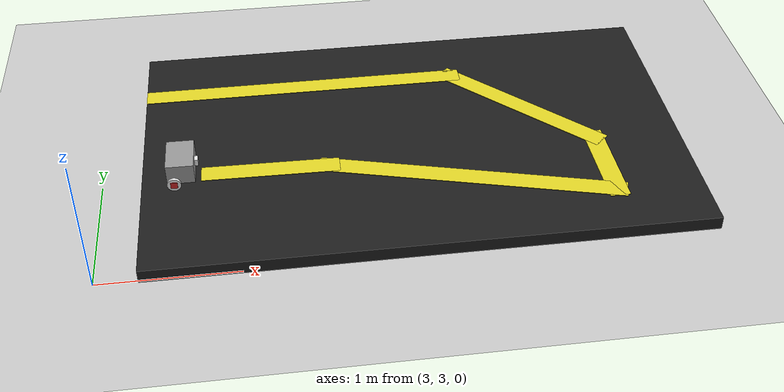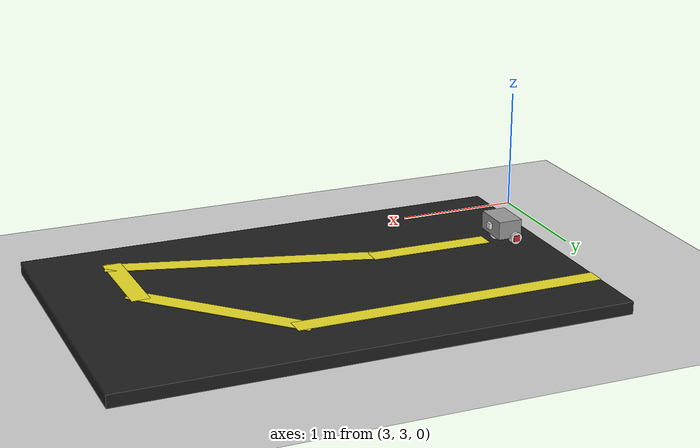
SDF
<sdf version="1.6">
 <world name="default">
  <light name="sun" type="directional">
   <pose>0 0 10 0 -0 0</pose>
   <diffuse>0.8 0.8 0.8 1</diffuse>
   <specular>0.2 0.2 0.2 1</specular>
   <attenuation>
    <range>1000</range>
    <constant>0.9</constant>
    <linear>0.01</linear>
    <quadratic>0.001</quadratic>
   </attenuation>
   <direction>-0.5 0.1 -0.9</direction>
  </light>
  <model name="ground_plane">
   <static>1</static>
   <link name="link">
    <collision name="collision">
     <geometry><plane><normal>0 0 1</normal><size>100 100</size></plane></geometry>
     <surface><friction><ode><mu>100</mu><mu2>50</mu2></ode></friction></surface>
    </collision>
    <visual name="visual">
     <cast_shadows>0</cast_shadows>
     <geometry><plane><normal>0 0 1</normal><size>100 100</size></plane></geometry>
     <material>
      <script><uri>file://media/materials/scripts/gazebo.material</uri><name>Gazebo/Grey</name></script>
     </material>
    </visual>
   </link>
  </model>
  <gravity>0 0 -9.8</gravity>
  <magnetic_field>6e-06 2.3e-05 -4.2e-05</magnetic_field>
  <atmosphere type="adiabatic"/>
  <physics name="default_physics" default="0" type="ode">
   <max_step_size>0.001</max_step_size>
   <real_time_factor>1</real_time_factor>
   <real_time_update_rate>1000</real_time_update_rate>
  </physics>
  <scene><ambient>0.4 0.4 0.4 1</ambient><background>0.7 0.7 0.7 1</background><shadows>1</shadows></scene>
  <spherical_coordinates>
   <surface_model>EARTH_WGS84</surface_model>
   <latitude_deg>0</latitude_deg>
   <longitude_deg>0</longitude_deg>
   <elevation>0</elevation>
   <heading_deg>0</heading_deg>
  </spherical_coordinates>
  <audio><device>default</device></audio>
  <model name="robot">
   <link name="base_link">
    <inertial>
     <pose>-0.09902 0 -0.001471 0 -0 0</pose>
     <mass>0.51</mass>
     <inertia>
      <ixx>0.00475265</ixx>
      <ixy>0</ixy>
      <ixz>3.67647e-05</ixz>
      <iyy>0.00269382</iyy>
      <iyz>0</iyz>
      <izz>0.00545118</izz>
     </inertia>
    </inertial>
    <collision name="base_link_fixed_joint_lump__bolinha_link_collision">
     <pose>-0.05 0 -0.075 0 -0 0</pose>
     <geometry><sphere><radius>0.05</radius></sphere></geometry>
     <surface><friction><ode><mu>0.001</mu><mu2>0.001</mu2></ode></friction></surface>
    </collision>
    <collision name="base_link_fixed_joint_lump__corpo_link_collision_1">
     <pose>-0.1 0 0 0 -0 0</pose>
     <geometry><box><size>0.2 0.3 0.15</size></box></geometry>
    </collision>
    <visual name="base_link_fixed_joint_lump__bolinha_link_visual">
     <pose>-0.05 0 -0.075 0 -0 0</pose>
     <geometry><sphere><radius>0.05</radius></sphere></geometry>
     <material>
      <script><name>Gazebo/White</name><uri>file://media/materials/scripts/gazebo.material</uri></script>
     </material>
    </visual>
    <visual name="base_link_fixed_joint_lump__corpo_link_visual_1">
     <pose>-0.1 0 0 0 -0 0</pose>
     <geometry><box><size>0.2 0.3 0.15</size></box></geometry>
     <material>
      <script><name>Gazebo/Grey</name><uri>file://media/materials/scripts/gazebo.material</uri></script>
     </material>
    </visual>
    <visual name="base_link_fixed_joint_lump__kinetic_link_visual_2">
     <pose>0 0 0 -3.14159 -0 0</pose>
     <geometry><box><size>0.05 0.05 0.05</size></box></geometry>
     <material>
      <script><name>Gazebo/White</name><uri>file://media/materials/scripts/gazebo.material</uri></script>
     </material>
    </visual>
    <sensor name="camera" type="depth">
     <update_rate>10</update_rate>
     <camera name="__default__">
      <horizontal_fov>1.0472</horizontal_fov>
      <image><width>640</width><height>480</height><format>B8G8R8</format></image>
      <clip><near>0.05</near><far>3</far></clip>
     </camera>
     <plugin name="camera_plugin" filename="libgazebo_ros_openni_kinect.so">
      <baseline>0.2</baseline>
      <alwaysOn>1</alwaysOn>
      <updateRate>0.0</updateRate>
      <cameraName>camera_ir</cameraName>
      <imageTopicName>/agent/camera/color/image_raw</imageTopicName>
      <cameraInfoTopicName>/agent/camera/color/camera_info</cameraInfoTopicName>
      <depthImageTopicName>/agent/camera/depth/image_raw</depthImageTopicName>
      <depthImageCameraInfoTopicName>/agent/camera/depth/camera_info</depthImageCameraInfoTopicName>
      <pointCloudTopicName>/agent/camera/depth/points</pointCloudTopicName>
      <frameName>dumb_kinetic</frameName>
      <pointCloudCutoff>0.5</pointCloudCutoff>
      <pointCloudCutoffMax>3.0</pointCloudCutoffMax>
      <distortionK1>0</distortionK1>
      <distortionK2>0</distortionK2>
      <distortionK3>0</distortionK3>
      <distortionT1>0</distortionT1>
      <distortionT2>0</distortionT2>
      <CxPrime>0</CxPrime>
      <Cx>0</Cx>
      <Cy>0</Cy>
      <focalLength>0</focalLength>
      <hackBaseline>0</hackBaseline>
      <robotNamespace>/</robotNamespace>
     </plugin>
    </sensor>
   </link>
   <link name="roda_direita_link">
    <pose>-0.15 -0.15 -0.075 1.5708 -0 0</pose>
    <inertial>
     <mass>0.01</mass>
     <inertia>
      <ixx>7.58333e-06</ixx>
      <ixy>0</ixy>
      <ixz>0</ixz>
      <iyy>7.58333e-06</iyy>
      <iyz>0</iyz>
      <izz>1.25e-05</izz>
     </inertia>
    </inertial>
    <collision name="roda_direita_link_collision">
     <geometry><cylinder><length>0.04</length><radius>0.05</radius></cylinder></geometry>
    </collision>
    <visual name="roda_direita_link_visual">
     <geometry><cylinder><length>0.04</length><radius>0.05</radius></cylinder></geometry>
     <material>
      <script><name>Gazebo/White</name><uri>file://media/materials/scripts/gazebo.material</uri></script>
     </material>
    </visual>
    <visual name="roda_direita_link_fixed_joint_lump__debug_box_2_visual_1">
     <geometry><box><size>0.05 0.05 0.05</size></box></geometry>
     <material>
      <script><name>Gazebo/Red</name><uri>file://media/materials/scripts/gazebo.material</uri></script>
     </material>
    </visual>
   </link>
   <joint name="roda_direita_joint" type="revolute">
    <child>roda_direita_link</child>
    <parent>base_link</parent>
    <axis>
     <xyz>0 1 -0</xyz>
     <limit><lower>-1e+16</lower><upper>1e+16</upper></limit>
     <dynamics><spring_reference>0</spring_reference><spring_stiffness>0</spring_stiffness></dynamics>
     <use_parent_model_frame>1</use_parent_model_frame>
    </axis>
   </joint>
   <link name="roda_esquerda_link">
    <pose>-0.15 0.15 -0.075 -1.5708 0 0</pose>
    <inertial>
     <mass>0.01</mass>
     <inertia>
      <ixx>7.58333e-06</ixx>
      <ixy>0</ixy>
      <ixz>0</ixz>
      <iyy>7.58333e-06</iyy>
      <iyz>0</iyz>
      <izz>1.25e-05</izz>
     </inertia>
    </inertial>
    <collision name="roda_esquerda_link_collision">
     <geometry><cylinder><length>0.04</length><radius>0.05</radius></cylinder></geometry>
    </collision>
    <visual name="roda_esquerda_link_visual">
     <geometry><cylinder><length>0.04</length><radius>0.05</radius></cylinder></geometry>
     <material>
      <script><name>Gazebo/White</name><uri>file://media/materials/scripts/gazebo.material</uri></script>
     </material>
    </visual>
    <visual name="roda_esquerda_link_fixed_joint_lump__debug_box_visual_1">
     <geometry><box><size>0.05 0.05 0.05</size></box></geometry>
     <material>
      <script><name>Gazebo/Red</name><uri>file://media/materials/scripts/gazebo.material</uri></script>
     </material>
    </visual>
   </link>
   <joint name="roda_esquerda_joint" type="revolute">
    <child>roda_esquerda_link</child>
    <parent>base_link</parent>
    <axis>
     <xyz>0 1 0</xyz>
     <limit><lower>-1e+16</lower><upper>1e+16</upper></limit>
     <dynamics><spring_reference>0</spring_reference><spring_stiffness>0</spring_stiffness></dynamics>
     <use_parent_model_frame>1</use_parent_model_frame>
    </axis>
   </joint>
   <static>0</static>
   <plugin name="diff_drive" filename="libgazebo_ros_diff_drive.so">
    <leftJoint>roda_esquerda_joint</leftJoint>
    <rightJoint>roda_direita_joint</rightJoint>
    <wheelSeparation>0.3</wheelSeparation>
    <wheelDiameter>0.1</wheelDiameter>
    <wheelTorque>200</wheelTorque>
    <wheelAcceleration>10.0</wheelAcceleration>
    <odometryTopic>odom</odometryTopic>
    <odometryFrame>odom</odometryFrame>
    <robotBaseFrame>base_link</robotBaseFrame>
    <publishOdom>1</publishOdom>
    <publishOdomTF>1</publishOdomTF>
    <publishWheelTF>1</publishWheelTF>
    <robotNamespace>/</robotNamespace>
   </plugin>
   <pose>3.69129 3.95641 0.226001 -1e-06 -2e-05 -0.00987</pose>
  </model>
  <model name="pista?">
   <pose>5.3204 4.2349 0 0 -0 0</pose>
   <link name="Floor_4">
    <collision name="Floor_4_Collision">
     <geometry><box><size>4.03987 2.5 0.1</size></box></geometry>
     <pose>0 0 0.05 0 -0 0</pose>
    </collision>
    <visual name="Floor_4_Visual">
     <pose>0 0 0.05 0 -0 0</pose>
     <geometry><box><size>4.03987 2.5 0.1</size></box></geometry>
     <material>
      <script><uri>file://media/materials/scripts/gazebo.material</uri><name>Gazebo/Black</name></script>
      <ambient>0 0 0 0</ambient>
     </material>
     <meta><layer>1</layer></meta>
    </visual>
    <pose>0 0 0.001 0 -0 0</pose>
   </link>
   <link name="Wall_0">
    <collision name="Wall_0_Collision">
     <geometry><box><size>2.5 0.15 0.001</size></box></geometry>
     <pose>0 0 0.0005 0 -0 0</pose>
    </collision>
    <visual name="Wall_0_Visual">
     <pose>0 0 0.0005 0 -0 0</pose>
     <geometry><box><size>2.5 0.15 0.001</size></box></geometry>
     <material>
      <script><uri>file://media/materials/scripts/gazebo.material</uri><name>Gazebo/Black</name></script>
      <ambient>0 0 0 0</ambient>
     </material>
     <meta><layer>0</layer></meta>
    </visual>
    <pose>-1.905 0 0 0 -0 -1.5708</pose>
   </link>
   <link name="Wall_1">
    <collision name="Wall_1_Collision">
     <geometry><box><size>4 0.15 0.001</size></box></geometry>
     <pose>0 0 0.0005 0 -0 0</pose>
    </collision>
    <visual name="Wall_1_Visual">
     <pose>0 0 0.0005 0 -0 0</pose>
     <geometry><box><size>4 0.15 0.001</size></box></geometry>
     <material>
      <script><uri>file://media/materials/scripts/gazebo.material</uri><name>Gazebo/Black</name></script>
      <ambient>0 0 0 0</ambient>
     </material>
     <meta><layer>0</layer></meta>
    </visual>
    <pose>0.02 -1.175 0 0 -0 0</pose>
   </link>
   <link name="Wall_2">
    <collision name="Wall_2_Collision">
     <geometry><box><size>2.5 0.15 0.001</size></box></geometry>
     <pose>0 0 0.0005 0 -0 0</pose>
    </collision>
    <visual name="Wall_2_Visual">
     <pose>0 0 0.0005 0 -0 0</pose>
     <geometry><box><size>2.5 0.15 0.001</size></box></geometry>
     <material>
      <script><uri>file://media/materials/scripts/gazebo.material</uri><name>Gazebo/Black</name></script>
      <ambient>0 0 0 0</ambient>
     </material>
     <meta><layer>0</layer></meta>
    </visual>
    <pose>1.945 0 0 0 -0 1.5708</pose>
   </link>
   <link name="Wall_3">
    <collision name="Wall_3_Collision">
     <geometry><box><size>4 0.15 0.001</size></box></geometry>
     <pose>0 0 0.0005 0 -0 0</pose>
    </collision>
    <visual name="Wall_3_Visual">
     <pose>0 0 0.0005 0 -0 0</pose>
     <geometry><box><size>4 0.15 0.001</size></box></geometry>
     <material>
      <script><uri>file://media/materials/scripts/gazebo.material</uri><name>Gazebo/Black</name></script>
      <ambient>0 0 0 0</ambient>
     </material>
     <meta><layer>0</layer></meta>
    </visual>
    <pose>0.02 1.175 0 0 -0 3.14159</pose>
   </link>
   <link name="Wall_37">
    <collision name="Wall_37_Collision">
     <geometry><box><size>2.5 0.15 0.001</size></box></geometry>
     <pose>0 0 0.0005 0 -0 0</pose>
    </collision>
    <visual name="Wall_37_Visual">
     <pose>0 0 0.0005 0 -0 0</pose>
     <geometry><box><size>2.5 0.15 0.001</size></box></geometry>
     <material>
      <script><uri>file://media/materials/scripts/gazebo.material</uri><name>Gazebo/Black</name></script>
      <ambient>0 0 0 0</ambient>
     </material>
     <meta><layer>1</layer></meta>
    </visual>
    <pose>-1.905 0 0.001 0 -0 -1.5708</pose>
   </link>
   <link name="Wall_38">
    <collision name="Wall_38_Collision">
     <geometry><box><size>4 0.15 0.001</size></box></geometry>
     <pose>0 0 0.0005 0 -0 0</pose>
    </collision>
    <visual name="Wall_38_Visual">
     <pose>0 0 0.0005 0 -0 0</pose>
     <geometry><box><size>4 0.15 0.001</size></box></geometry>
     <material>
      <script><uri>file://media/materials/scripts/gazebo.material</uri><name>Gazebo/Black</name></script>
      <ambient>0 0 0 0</ambient>
     </material>
     <meta><layer>1</layer></meta>
    </visual>
    <pose>0.02 -1.175 0.001 0 -0 0</pose>
   </link>
   <link name="Wall_39">
    <collision name="Wall_39_Collision">
     <geometry><box><size>2.5 0.15 0.001</size></box></geometry>
     <pose>0 0 0.0005 0 -0 0</pose>
    </collision>
    <visual name="Wall_39_Visual">
     <pose>0 0 0.0005 0 -0 0</pose>
     <geometry><box><size>2.5 0.15 0.001</size></box></geometry>
     <material>
      <script><uri>file://media/materials/scripts/gazebo.material</uri><name>Gazebo/Black</name></script>
      <ambient>0 0 0 0</ambient>
     </material>
     <meta><layer>1</layer></meta>
    </visual>
    <pose>1.945 0 0.001 0 -0 1.5708</pose>
   </link>
   <link name="Wall_40">
    <collision name="Wall_40_Collision">
     <geometry><box><size>4 0.15 0.001</size></box></geometry>
     <pose>0 0 0.0005 0 -0 0</pose>
    </collision>
    <visual name="Wall_40_Visual">
     <pose>0 0 0.0005 0 -0 0</pose>
     <geometry><box><size>4 0.15 0.001</size></box></geometry>
     <material>
      <script><uri>file://media/materials/scripts/gazebo.material</uri><name>Gazebo/Black</name></script>
      <ambient>0 0 0 0</ambient>
     </material>
     <meta><layer>1</layer></meta>
    </visual>
    <pose>0.02 1.175 0.001 0 -0 3.14159</pose>
   </link>
   <link name="Wall_41">
    <collision name="Wall_41_Collision">
     <geometry><box><size>2.5 0.15 0.105</size></box></geometry>
     <pose>0 0 0.0525 0 -0 0</pose>
    </collision>
    <visual name="Wall_41_Visual">
     <pose>0 0 0.0525 0 -0 0</pose>
     <geometry><box><size>2.5 0.15 0.105</size></box></geometry>
     <material>
      <script><uri>file://media/materials/scripts/gazebo.material</uri><name>Gazebo/Yellow</name></script>
      <ambient>1 1 1 1</ambient>
     </material>
     <meta><layer>1</layer></meta>
    </visual>
    <pose>-0.77 0.721 0.001 0 -0 0</pose>
   </link>
   <link name="Wall_42">
    <collision name="Wall_42_Collision">
     <geometry><box><size>1.5 0.15 0.105</size></box></geometry>
     <pose>0 0 0.0525 0 -0 0</pose>
    </collision>
    <visual name="Wall_42_Visual">
     <pose>0 0 0.0525 0 -0 0</pose>
     <geometry><box><size>1.5 0.15 0.105</size></box></geometry>
     <material>
      <script><uri>file://media/materials/scripts/gazebo.material</uri><name>Gazebo/Yellow</name></script>
      <ambient>1 1 1 1</ambient>
     </material>
     <meta><layer>1</layer></meta>
    </visual>
    <pose>0.8825 0.2435 0.001 0 -0 -0.785398</pose>
   </link>
   <link name="Wall_43">
    <collision name="Wall_43_Collision">
     <geometry><box><size>0.763345 0.15 0.105</size></box></geometry>
     <pose>0 0 0.0525 0 -0 0</pose>
    </collision>
    <visual name="Wall_43_Visual">
     <pose>0 0 0.0525 0 -0 0</pose>
     <geometry><box><size>0.763345 0.15 0.105</size></box></geometry>
     <material>
      <script><uri>file://media/materials/scripts/gazebo.material</uri><name>Gazebo/Yellow</name></script>
      <ambient>1 1 1 1</ambient>
     </material>
     <meta><layer>1</layer></meta>
    </visual>
    <pose>1.3665 -0.5405 0.001 0 -0 -1.54959</pose>
   </link>
   <link name="Wall_44">
    <collision name="Wall_44_Collision">
     <geometry><box><size>2.25034 0.15 0.105</size></box></geometry>
     <pose>0 0 0.0525 0 -0 0</pose>
    </collision>
    <visual name="Wall_44_Visual">
     <pose>0 0 0.0525 0 -0 0</pose>
     <geometry><box><size>2.25034 0.15 0.105</size></box></geometry>
     <material>
      <script><uri>file://media/materials/scripts/gazebo.material</uri><name>Gazebo/Yellow</name></script>
      <ambient>1 1 1 1</ambient>
     </material>
     <meta><layer>1</layer></meta>
    </visual>
    <pose>0.3585 -0.575 0.001 0 -0 2.87964</pose>
   </link>
   <link name="Wall_45">
    <collision name="Wall_45_Collision">
     <geometry><box><size>1.0131 0.15 0.105</size></box></geometry>
     <pose>0 0 0.0525 0 -0 0</pose>
    </collision>
    <visual name="Wall_45_Visual">
     <pose>0 0 0.0525 0 -0 0</pose>
     <geometry><box><size>1.0131 0.15 0.105</size></box></geometry>
     <material>
      <script><uri>file://media/materials/scripts/gazebo.material</uri><name>Gazebo/Yellow</name></script>
      <ambient>1 1 1 1</ambient>
     </material>
     <meta><layer>1</layer></meta>
    </visual>
    <pose>-1.0875 -0.2965 0.001 0 -0 3.12653</pose>
   </link>
   <static>1</static>
  </model>
  <light name="user_spot_light_0" type="spot">
   <pose>5.15079 4.23758 1 0 -0 0</pose>
   <diffuse>0.5 0.5 0.5 1</diffuse>
   <specular>0.1 0.1 0.1 1</specular>
   <direction>0 0 -1</direction>
   <attenuation>
    <range>20</range>
    <constant>0.5</constant>
    <linear>0.01</linear>
    <quadratic>0.001</quadratic>
   </attenuation>
   <cast_shadows>0</cast_shadows>
   <spot><inner_angle>0.6</inner_angle><outer_angle>1</outer_angle><falloff>1</falloff></spot>
  </light>
 </world>
</sdf>
